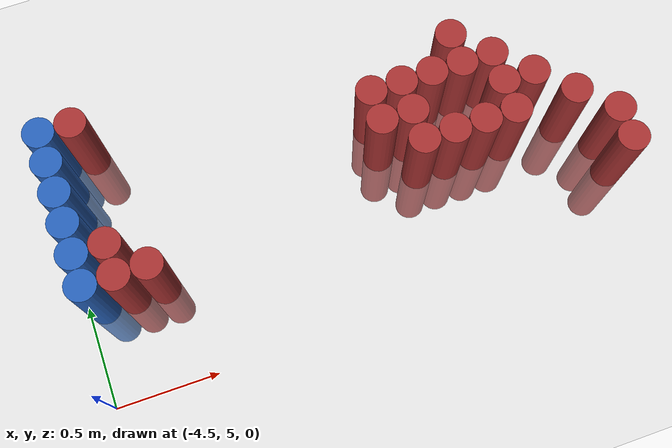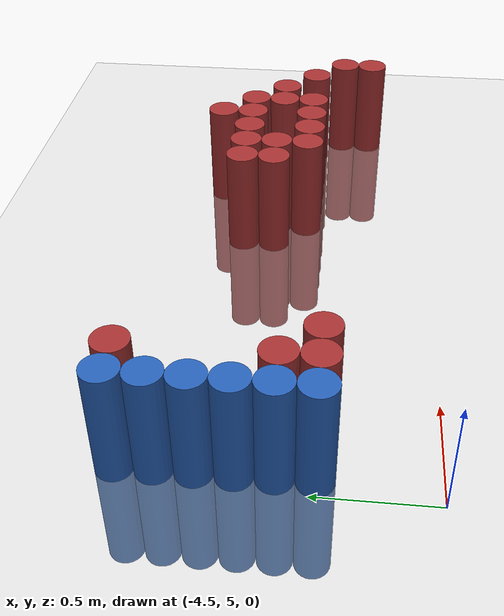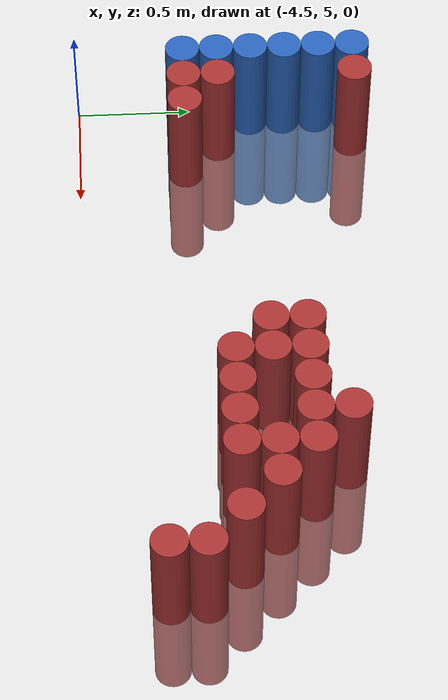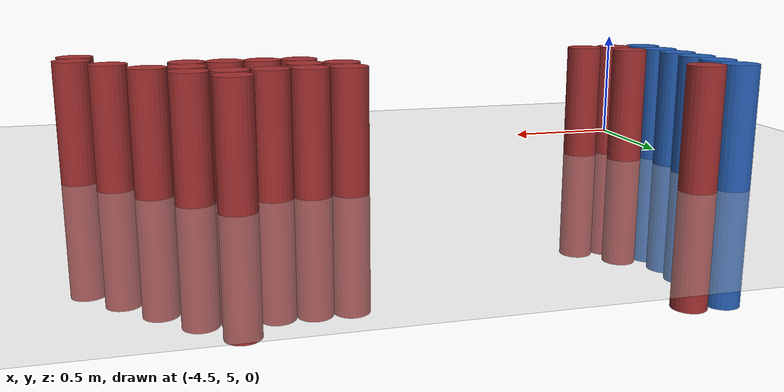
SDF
<sdf version="1.6">
 <world name="default">
  <model name="ground_plane">
   <static>1</static>
   <link name="link">
    <collision name="collision">
     <geometry><plane><normal>0 0 1</normal><size>100 100</size></plane></geometry>
     <surface><friction><ode><mu>100</mu><mu2>50</mu2></ode></friction></surface>
    </collision>
    <visual name="visual">
     <cast_shadows>0</cast_shadows>
     <geometry><plane><normal>0 0 1</normal><size>100 100</size></plane></geometry>
     <material>
      <script><uri>file://media/materials/scripts/gazebo.material</uri><name>Gazebo/Grey</name></script>
     </material>
    </visual>
   </link>
  </model>
  <model name="unit_cylinder_98">
   <static>1</static>
   <pose>-4.425000 5.475000 0.000000 0.000000 0.000000 0.000000</pose>
   <link name="link">
    <inertial>
     <mass>1</mass>
     <inertia><ixx>0.145833</ixx><ixy>0</ixy><ixz>0</ixz><iyy>0.145833</iyy><iyz>0</iyz><izz>0.125</izz></inertia>
    </inertial>
    <collision name="collision">
     <geometry><cylinder><radius>0.075000</radius><length>1</length></cylinder></geometry>
    </collision>
    <visual name="visual">
     <geometry><cylinder><radius>0.075000</radius><length>1</length></cylinder></geometry>
     <material>
      <ambient>0.152000 0.379000 0.720000 1</ambient>
      <diffuse>0.152000 0.379000 0.720000 1</diffuse>
     </material>
     <material>
      <script><name>Gazebo/Grey</name><uri>file://media/materials/scripts/gazebo.material</uri></script>
     </material>
    </visual>
   </link>
  </model>
  <model name="unit_cylinder_99">
   <static>1</static>
   <pose>-4.425000 5.625000 0.000000 0.000000 0.000000 0.000000</pose>
   <link name="link">
    <inertial>
     <mass>1</mass>
     <inertia><ixx>0.145833</ixx><ixy>0</ixy><ixz>0</ixz><iyy>0.145833</iyy><iyz>0</iyz><izz>0.125</izz></inertia>
    </inertial>
    <collision name="collision">
     <geometry><cylinder><radius>0.075000</radius><length>1</length></cylinder></geometry>
    </collision>
    <visual name="visual">
     <geometry><cylinder><radius>0.075000</radius><length>1</length></cylinder></geometry>
     <material>
      <ambient>0.152000 0.379000 0.720000 1</ambient>
      <diffuse>0.152000 0.379000 0.720000 1</diffuse>
     </material>
     <material>
      <script><name>Gazebo/Grey</name><uri>file://media/materials/scripts/gazebo.material</uri></script>
     </material>
    </visual>
   </link>
  </model>
  <model name="unit_cylinder_100">
   <static>1</static>
   <pose>-4.425000 5.775000 0.000000 0.000000 0.000000 0.000000</pose>
   <link name="link">
    <inertial>
     <mass>1</mass>
     <inertia><ixx>0.145833</ixx><ixy>0</ixy><ixz>0</ixz><iyy>0.145833</iyy><iyz>0</iyz><izz>0.125</izz></inertia>
    </inertial>
    <collision name="collision">
     <geometry><cylinder><radius>0.075000</radius><length>1</length></cylinder></geometry>
    </collision>
    <visual name="visual">
     <geometry><cylinder><radius>0.075000</radius><length>1</length></cylinder></geometry>
     <material>
      <ambient>0.152000 0.379000 0.720000 1</ambient>
      <diffuse>0.152000 0.379000 0.720000 1</diffuse>
     </material>
     <material>
      <script><name>Gazebo/Grey</name><uri>file://media/materials/scripts/gazebo.material</uri></script>
     </material>
    </visual>
   </link>
  </model>
  <model name="unit_cylinder_101">
   <static>1</static>
   <pose>-4.425000 5.925000 0.000000 0.000000 0.000000 0.000000</pose>
   <link name="link">
    <inertial>
     <mass>1</mass>
     <inertia><ixx>0.145833</ixx><ixy>0</ixy><ixz>0</ixz><iyy>0.145833</iyy><iyz>0</iyz><izz>0.125</izz></inertia>
    </inertial>
    <collision name="collision">
     <geometry><cylinder><radius>0.075000</radius><length>1</length></cylinder></geometry>
    </collision>
    <visual name="visual">
     <geometry><cylinder><radius>0.075000</radius><length>1</length></cylinder></geometry>
     <material>
      <ambient>0.152000 0.379000 0.720000 1</ambient>
      <diffuse>0.152000 0.379000 0.720000 1</diffuse>
     </material>
     <material>
      <script><name>Gazebo/Grey</name><uri>file://media/materials/scripts/gazebo.material</uri></script>
     </material>
    </visual>
   </link>
  </model>
  <model name="unit_cylinder_102">
   <static>1</static>
   <pose>-4.425000 6.075000 0.000000 0.000000 0.000000 0.000000</pose>
   <link name="link">
    <inertial>
     <mass>1</mass>
     <inertia><ixx>0.145833</ixx><ixy>0</ixy><ixz>0</ixz><iyy>0.145833</iyy><iyz>0</iyz><izz>0.125</izz></inertia>
    </inertial>
    <collision name="collision">
     <geometry><cylinder><radius>0.075000</radius><length>1</length></cylinder></geometry>
    </collision>
    <visual name="visual">
     <geometry><cylinder><radius>0.075000</radius><length>1</length></cylinder></geometry>
     <material>
      <ambient>0.152000 0.379000 0.720000 1</ambient>
      <diffuse>0.152000 0.379000 0.720000 1</diffuse>
     </material>
     <material>
      <script><name>Gazebo/Grey</name><uri>file://media/materials/scripts/gazebo.material</uri></script>
     </material>
    </visual>
   </link>
  </model>
  <model name="unit_cylinder_103">
   <static>1</static>
   <pose>-4.425000 6.225000 0.000000 0.000000 0.000000 0.000000</pose>
   <link name="link">
    <inertial>
     <mass>1</mass>
     <inertia><ixx>0.145833</ixx><ixy>0</ixy><ixz>0</ixz><iyy>0.145833</iyy><iyz>0</iyz><izz>0.125</izz></inertia>
    </inertial>
    <collision name="collision">
     <geometry><cylinder><radius>0.075000</radius><length>1</length></cylinder></geometry>
    </collision>
    <visual name="visual">
     <geometry><cylinder><radius>0.075000</radius><length>1</length></cylinder></geometry>
     <material>
      <ambient>0.152000 0.379000 0.720000 1</ambient>
      <diffuse>0.152000 0.379000 0.720000 1</diffuse>
     </material>
     <material>
      <script><name>Gazebo/Grey</name><uri>file://media/materials/scripts/gazebo.material</uri></script>
     </material>
    </visual>
   </link>
  </model>
  <model name="unit_cylinder_127">
   <static>1</static>
   <pose>-4.275000 5.475000 0.000000 0.000000 0.000000 0.000000</pose>
   <link name="link">
    <inertial>
     <mass>1</mass>
     <inertia><ixx>0.145833</ixx><ixy>0</ixy><ixz>0</ixz><iyy>0.145833</iyy><iyz>0</iyz><izz>0.125</izz></inertia>
    </inertial>
    <collision name="collision">
     <geometry><cylinder><radius>0.075000</radius><length>1</length></cylinder></geometry>
    </collision>
    <visual name="visual">
     <geometry><cylinder><radius>0.075000</radius><length>1</length></cylinder></geometry>
     <material>
      <ambient>0.648000 0.192000 0.192000 1</ambient>
      <diffuse>0.648000 0.192000 0.192000 1</diffuse>
     </material>
     <material>
      <script><name>Gazebo/Grey</name><uri>file://media/materials/scripts/gazebo.material</uri></script>
     </material>
    </visual>
   </link>
  </model>
  <model name="unit_cylinder_128">
   <static>1</static>
   <pose>-4.275000 5.625000 0.000000 0.000000 0.000000 0.000000</pose>
   <link name="link">
    <inertial>
     <mass>1</mass>
     <inertia><ixx>0.145833</ixx><ixy>0</ixy><ixz>0</ixz><iyy>0.145833</iyy><iyz>0</iyz><izz>0.125</izz></inertia>
    </inertial>
    <collision name="collision">
     <geometry><cylinder><radius>0.075000</radius><length>1</length></cylinder></geometry>
    </collision>
    <visual name="visual">
     <geometry><cylinder><radius>0.075000</radius><length>1</length></cylinder></geometry>
     <material>
      <ambient>0.648000 0.192000 0.192000 1</ambient>
      <diffuse>0.648000 0.192000 0.192000 1</diffuse>
     </material>
     <material>
      <script><name>Gazebo/Grey</name><uri>file://media/materials/scripts/gazebo.material</uri></script>
     </material>
    </visual>
   </link>
  </model>
  <model name="unit_cylinder_129">
   <static>1</static>
   <pose>-4.275000 6.225000 0.000000 0.000000 0.000000 0.000000</pose>
   <link name="link">
    <inertial>
     <mass>1</mass>
     <inertia><ixx>0.145833</ixx><ixy>0</ixy><ixz>0</ixz><iyy>0.145833</iyy><iyz>0</iyz><izz>0.125</izz></inertia>
    </inertial>
    <collision name="collision">
     <geometry><cylinder><radius>0.075000</radius><length>1</length></cylinder></geometry>
    </collision>
    <visual name="visual">
     <geometry><cylinder><radius>0.075000</radius><length>1</length></cylinder></geometry>
     <material>
      <ambient>0.648000 0.192000 0.192000 1</ambient>
      <diffuse>0.648000 0.192000 0.192000 1</diffuse>
     </material>
     <material>
      <script><name>Gazebo/Grey</name><uri>file://media/materials/scripts/gazebo.material</uri></script>
     </material>
    </visual>
   </link>
  </model>
  <model name="unit_cylinder_141">
   <static>1</static>
   <pose>-4.125000 5.475000 0.000000 0.000000 0.000000 0.000000</pose>
   <link name="link">
    <inertial>
     <mass>1</mass>
     <inertia><ixx>0.145833</ixx><ixy>0</ixy><ixz>0</ixz><iyy>0.145833</iyy><iyz>0</iyz><izz>0.125</izz></inertia>
    </inertial>
    <collision name="collision">
     <geometry><cylinder><radius>0.075000</radius><length>1</length></cylinder></geometry>
    </collision>
    <visual name="visual">
     <geometry><cylinder><radius>0.075000</radius><length>1</length></cylinder></geometry>
     <material>
      <ambient>0.648000 0.192000 0.192000 1</ambient>
      <diffuse>0.648000 0.192000 0.192000 1</diffuse>
     </material>
     <material>
      <script><name>Gazebo/Grey</name><uri>file://media/materials/scripts/gazebo.material</uri></script>
     </material>
    </visual>
   </link>
  </model>
  <model name="unit_cylinder_156">
   <static>1</static>
   <pose>-2.925000 5.775000 0.000000 0.000000 0.000000 0.000000</pose>
   <link name="link">
    <inertial>
     <mass>1</mass>
     <inertia><ixx>0.145833</ixx><ixy>0</ixy><ixz>0</ixz><iyy>0.145833</iyy><iyz>0</iyz><izz>0.125</izz></inertia>
    </inertial>
    <collision name="collision">
     <geometry><cylinder><radius>0.075000</radius><length>1</length></cylinder></geometry>
    </collision>
    <visual name="visual">
     <geometry><cylinder><radius>0.075000</radius><length>1</length></cylinder></geometry>
     <material>
      <ambient>0.648000 0.192000 0.192000 1</ambient>
      <diffuse>0.648000 0.192000 0.192000 1</diffuse>
     </material>
     <material>
      <script><name>Gazebo/Grey</name><uri>file://media/materials/scripts/gazebo.material</uri></script>
     </material>
    </visual>
   </link>
  </model>
  <model name="unit_cylinder_157">
   <static>1</static>
   <pose>-2.925000 5.925000 0.000000 0.000000 0.000000 0.000000</pose>
   <link name="link">
    <inertial>
     <mass>1</mass>
     <inertia><ixx>0.145833</ixx><ixy>0</ixy><ixz>0</ixz><iyy>0.145833</iyy><iyz>0</iyz><izz>0.125</izz></inertia>
    </inertial>
    <collision name="collision">
     <geometry><cylinder><radius>0.075000</radius><length>1</length></cylinder></geometry>
    </collision>
    <visual name="visual">
     <geometry><cylinder><radius>0.075000</radius><length>1</length></cylinder></geometry>
     <material>
      <ambient>0.648000 0.192000 0.192000 1</ambient>
      <diffuse>0.648000 0.192000 0.192000 1</diffuse>
     </material>
     <material>
      <script><name>Gazebo/Grey</name><uri>file://media/materials/scripts/gazebo.material</uri></script>
     </material>
    </visual>
   </link>
  </model>
  <model name="unit_cylinder_159">
   <static>1</static>
   <pose>-2.775000 5.625000 0.000000 0.000000 0.000000 0.000000</pose>
   <link name="link">
    <inertial>
     <mass>1</mass>
     <inertia><ixx>0.145833</ixx><ixy>0</ixy><ixz>0</ixz><iyy>0.145833</iyy><iyz>0</iyz><izz>0.125</izz></inertia>
    </inertial>
    <collision name="collision">
     <geometry><cylinder><radius>0.075000</radius><length>1</length></cylinder></geometry>
    </collision>
    <visual name="visual">
     <geometry><cylinder><radius>0.075000</radius><length>1</length></cylinder></geometry>
     <material>
      <ambient>0.648000 0.192000 0.192000 1</ambient>
      <diffuse>0.648000 0.192000 0.192000 1</diffuse>
     </material>
     <material>
      <script><name>Gazebo/Grey</name><uri>file://media/materials/scripts/gazebo.material</uri></script>
     </material>
    </visual>
   </link>
  </model>
  <model name="unit_cylinder_160">
   <static>1</static>
   <pose>-2.775000 5.775000 0.000000 0.000000 0.000000 0.000000</pose>
   <link name="link">
    <inertial>
     <mass>1</mass>
     <inertia><ixx>0.145833</ixx><ixy>0</ixy><ixz>0</ixz><iyy>0.145833</iyy><iyz>0</iyz><izz>0.125</izz></inertia>
    </inertial>
    <collision name="collision">
     <geometry><cylinder><radius>0.075000</radius><length>1</length></cylinder></geometry>
    </collision>
    <visual name="visual">
     <geometry><cylinder><radius>0.075000</radius><length>1</length></cylinder></geometry>
     <material>
      <ambient>0.648000 0.192000 0.192000 1</ambient>
      <diffuse>0.648000 0.192000 0.192000 1</diffuse>
     </material>
     <material>
      <script><name>Gazebo/Grey</name><uri>file://media/materials/scripts/gazebo.material</uri></script>
     </material>
    </visual>
   </link>
  </model>
  <model name="unit_cylinder_161">
   <static>1</static>
   <pose>-2.775000 5.925000 0.000000 0.000000 0.000000 0.000000</pose>
   <link name="link">
    <inertial>
     <mass>1</mass>
     <inertia><ixx>0.145833</ixx><ixy>0</ixy><ixz>0</ixz><iyy>0.145833</iyy><iyz>0</iyz><izz>0.125</izz></inertia>
    </inertial>
    <collision name="collision">
     <geometry><cylinder><radius>0.075000</radius><length>1</length></cylinder></geometry>
    </collision>
    <visual name="visual">
     <geometry><cylinder><radius>0.075000</radius><length>1</length></cylinder></geometry>
     <material>
      <ambient>0.648000 0.192000 0.192000 1</ambient>
      <diffuse>0.648000 0.192000 0.192000 1</diffuse>
     </material>
     <material>
      <script><name>Gazebo/Grey</name><uri>file://media/materials/scripts/gazebo.material</uri></script>
     </material>
    </visual>
   </link>
  </model>
  <model name="unit_cylinder_165">
   <static>1</static>
   <pose>-2.625000 5.625000 0.000000 0.000000 0.000000 0.000000</pose>
   <link name="link">
    <inertial>
     <mass>1</mass>
     <inertia><ixx>0.145833</ixx><ixy>0</ixy><ixz>0</ixz><iyy>0.145833</iyy><iyz>0</iyz><izz>0.125</izz></inertia>
    </inertial>
    <collision name="collision">
     <geometry><cylinder><radius>0.075000</radius><length>1</length></cylinder></geometry>
    </collision>
    <visual name="visual">
     <geometry><cylinder><radius>0.075000</radius><length>1</length></cylinder></geometry>
     <material>
      <ambient>0.648000 0.192000 0.192000 1</ambient>
      <diffuse>0.648000 0.192000 0.192000 1</diffuse>
     </material>
     <material>
      <script><name>Gazebo/Grey</name><uri>file://media/materials/scripts/gazebo.material</uri></script>
     </material>
    </visual>
   </link>
  </model>
  <model name="unit_cylinder_166">
   <static>1</static>
   <pose>-2.625000 5.925000 0.000000 0.000000 0.000000 0.000000</pose>
   <link name="link">
    <inertial>
     <mass>1</mass>
     <inertia><ixx>0.145833</ixx><ixy>0</ixy><ixz>0</ixz><iyy>0.145833</iyy><iyz>0</iyz><izz>0.125</izz></inertia>
    </inertial>
    <collision name="collision">
     <geometry><cylinder><radius>0.075000</radius><length>1</length></cylinder></geometry>
    </collision>
    <visual name="visual">
     <geometry><cylinder><radius>0.075000</radius><length>1</length></cylinder></geometry>
     <material>
      <ambient>0.648000 0.192000 0.192000 1</ambient>
      <diffuse>0.648000 0.192000 0.192000 1</diffuse>
     </material>
     <material>
      <script><name>Gazebo/Grey</name><uri>file://media/materials/scripts/gazebo.material</uri></script>
     </material>
    </visual>
   </link>
  </model>
  <model name="unit_cylinder_171">
   <static>1</static>
   <pose>-2.475000 5.625000 0.000000 0.000000 0.000000 0.000000</pose>
   <link name="link">
    <inertial>
     <mass>1</mass>
     <inertia><ixx>0.145833</ixx><ixy>0</ixy><ixz>0</ixz><iyy>0.145833</iyy><iyz>0</iyz><izz>0.125</izz></inertia>
    </inertial>
    <collision name="collision">
     <geometry><cylinder><radius>0.075000</radius><length>1</length></cylinder></geometry>
    </collision>
    <visual name="visual">
     <geometry><cylinder><radius>0.075000</radius><length>1</length></cylinder></geometry>
     <material>
      <ambient>0.648000 0.192000 0.192000 1</ambient>
      <diffuse>0.648000 0.192000 0.192000 1</diffuse>
     </material>
     <material>
      <script><name>Gazebo/Grey</name><uri>file://media/materials/scripts/gazebo.material</uri></script>
     </material>
    </visual>
   </link>
  </model>
  <model name="unit_cylinder_172">
   <static>1</static>
   <pose>-2.475000 5.925000 0.000000 0.000000 0.000000 0.000000</pose>
   <link name="link">
    <inertial>
     <mass>1</mass>
     <inertia><ixx>0.145833</ixx><ixy>0</ixy><ixz>0</ixz><iyy>0.145833</iyy><iyz>0</iyz><izz>0.125</izz></inertia>
    </inertial>
    <collision name="collision">
     <geometry><cylinder><radius>0.075000</radius><length>1</length></cylinder></geometry>
    </collision>
    <visual name="visual">
     <geometry><cylinder><radius>0.075000</radius><length>1</length></cylinder></geometry>
     <material>
      <ambient>0.648000 0.192000 0.192000 1</ambient>
      <diffuse>0.648000 0.192000 0.192000 1</diffuse>
     </material>
     <material>
      <script><name>Gazebo/Grey</name><uri>file://media/materials/scripts/gazebo.material</uri></script>
     </material>
    </visual>
   </link>
  </model>
  <model name="unit_cylinder_173">
   <static>1</static>
   <pose>-2.475000 6.075000 0.000000 0.000000 0.000000 0.000000</pose>
   <link name="link">
    <inertial>
     <mass>1</mass>
     <inertia><ixx>0.145833</ixx><ixy>0</ixy><ixz>0</ixz><iyy>0.145833</iyy><iyz>0</iyz><izz>0.125</izz></inertia>
    </inertial>
    <collision name="collision">
     <geometry><cylinder><radius>0.075000</radius><length>1</length></cylinder></geometry>
    </collision>
    <visual name="visual">
     <geometry><cylinder><radius>0.075000</radius><length>1</length></cylinder></geometry>
     <material>
      <ambient>0.648000 0.192000 0.192000 1</ambient>
      <diffuse>0.648000 0.192000 0.192000 1</diffuse>
     </material>
     <material>
      <script><name>Gazebo/Grey</name><uri>file://media/materials/scripts/gazebo.material</uri></script>
     </material>
    </visual>
   </link>
  </model>
  <model name="unit_cylinder_178">
   <static>1</static>
   <pose>-2.325000 5.625000 0.000000 0.000000 0.000000 0.000000</pose>
   <link name="link">
    <inertial>
     <mass>1</mass>
     <inertia><ixx>0.145833</ixx><ixy>0</ixy><ixz>0</ixz><iyy>0.145833</iyy><iyz>0</iyz><izz>0.125</izz></inertia>
    </inertial>
    <collision name="collision">
     <geometry><cylinder><radius>0.075000</radius><length>1</length></cylinder></geometry>
    </collision>
    <visual name="visual">
     <geometry><cylinder><radius>0.075000</radius><length>1</length></cylinder></geometry>
     <material>
      <ambient>0.648000 0.192000 0.192000 1</ambient>
      <diffuse>0.648000 0.192000 0.192000 1</diffuse>
     </material>
     <material>
      <script><name>Gazebo/Grey</name><uri>file://media/materials/scripts/gazebo.material</uri></script>
     </material>
    </visual>
   </link>
  </model>
  <model name="unit_cylinder_179">
   <static>1</static>
   <pose>-2.325000 5.775000 0.000000 0.000000 0.000000 0.000000</pose>
   <link name="link">
    <inertial>
     <mass>1</mass>
     <inertia><ixx>0.145833</ixx><ixy>0</ixy><ixz>0</ixz><iyy>0.145833</iyy><iyz>0</iyz><izz>0.125</izz></inertia>
    </inertial>
    <collision name="collision">
     <geometry><cylinder><radius>0.075000</radius><length>1</length></cylinder></geometry>
    </collision>
    <visual name="visual">
     <geometry><cylinder><radius>0.075000</radius><length>1</length></cylinder></geometry>
     <material>
      <ambient>0.648000 0.192000 0.192000 1</ambient>
      <diffuse>0.648000 0.192000 0.192000 1</diffuse>
     </material>
     <material>
      <script><name>Gazebo/Grey</name><uri>file://media/materials/scripts/gazebo.material</uri></script>
     </material>
    </visual>
   </link>
  </model>
  <model name="unit_cylinder_180">
   <static>1</static>
   <pose>-2.325000 5.925000 0.000000 0.000000 0.000000 0.000000</pose>
   <link name="link">
    <inertial>
     <mass>1</mass>
     <inertia><ixx>0.145833</ixx><ixy>0</ixy><ixz>0</ixz><iyy>0.145833</iyy><iyz>0</iyz><izz>0.125</izz></inertia>
    </inertial>
    <collision name="collision">
     <geometry><cylinder><radius>0.075000</radius><length>1</length></cylinder></geometry>
    </collision>
    <visual name="visual">
     <geometry><cylinder><radius>0.075000</radius><length>1</length></cylinder></geometry>
     <material>
      <ambient>0.648000 0.192000 0.192000 1</ambient>
      <diffuse>0.648000 0.192000 0.192000 1</diffuse>
     </material>
     <material>
      <script><name>Gazebo/Grey</name><uri>file://media/materials/scripts/gazebo.material</uri></script>
     </material>
    </visual>
   </link>
  </model>
  <model name="unit_cylinder_184">
   <static>1</static>
   <pose>-2.175000 5.775000 0.000000 0.000000 0.000000 0.000000</pose>
   <link name="link">
    <inertial>
     <mass>1</mass>
     <inertia><ixx>0.145833</ixx><ixy>0</ixy><ixz>0</ixz><iyy>0.145833</iyy><iyz>0</iyz><izz>0.125</izz></inertia>
    </inertial>
    <collision name="collision">
     <geometry><cylinder><radius>0.075000</radius><length>1</length></cylinder></geometry>
    </collision>
    <visual name="visual">
     <geometry><cylinder><radius>0.075000</radius><length>1</length></cylinder></geometry>
     <material>
      <ambient>0.648000 0.192000 0.192000 1</ambient>
      <diffuse>0.648000 0.192000 0.192000 1</diffuse>
     </material>
     <material>
      <script><name>Gazebo/Grey</name><uri>file://media/materials/scripts/gazebo.material</uri></script>
     </material>
    </visual>
   </link>
  </model>
  <model name="unit_cylinder_189">
   <static>1</static>
   <pose>-2.025000 5.625000 0.000000 0.000000 0.000000 0.000000</pose>
   <link name="link">
    <inertial>
     <mass>1</mass>
     <inertia><ixx>0.145833</ixx><ixy>0</ixy><ixz>0</ixz><iyy>0.145833</iyy><iyz>0</iyz><izz>0.125</izz></inertia>
    </inertial>
    <collision name="collision">
     <geometry><cylinder><radius>0.075000</radius><length>1</length></cylinder></geometry>
    </collision>
    <visual name="visual">
     <geometry><cylinder><radius>0.075000</radius><length>1</length></cylinder></geometry>
     <material>
      <ambient>0.648000 0.192000 0.192000 1</ambient>
      <diffuse>0.648000 0.192000 0.192000 1</diffuse>
     </material>
     <material>
      <script><name>Gazebo/Grey</name><uri>file://media/materials/scripts/gazebo.material</uri></script>
     </material>
    </visual>
   </link>
  </model>
  <model name="unit_cylinder_191">
   <static>1</static>
   <pose>-1.875000 5.325000 0.000000 0.000000 0.000000 0.000000</pose>
   <link name="link">
    <inertial>
     <mass>1</mass>
     <inertia><ixx>0.145833</ixx><ixy>0</ixy><ixz>0</ixz><iyy>0.145833</iyy><iyz>0</iyz><izz>0.125</izz></inertia>
    </inertial>
    <collision name="collision">
     <geometry><cylinder><radius>0.075000</radius><length>1</length></cylinder></geometry>
    </collision>
    <visual name="visual">
     <geometry><cylinder><radius>0.075000</radius><length>1</length></cylinder></geometry>
     <material>
      <ambient>0.648000 0.192000 0.192000 1</ambient>
      <diffuse>0.648000 0.192000 0.192000 1</diffuse>
     </material>
     <material>
      <script><name>Gazebo/Grey</name><uri>file://media/materials/scripts/gazebo.material</uri></script>
     </material>
    </visual>
   </link>
  </model>
  <model name="unit_cylinder_192">
   <static>1</static>
   <pose>-1.875000 5.475000 0.000000 0.000000 0.000000 0.000000</pose>
   <link name="link">
    <inertial>
     <mass>1</mass>
     <inertia><ixx>0.145833</ixx><ixy>0</ixy><ixz>0</ixz><iyy>0.145833</iyy><iyz>0</iyz><izz>0.125</izz></inertia>
    </inertial>
    <collision name="collision">
     <geometry><cylinder><radius>0.075000</radius><length>1</length></cylinder></geometry>
    </collision>
    <visual name="visual">
     <geometry><cylinder><radius>0.075000</radius><length>1</length></cylinder></geometry>
     <material>
      <ambient>0.648000 0.192000 0.192000 1</ambient>
      <diffuse>0.648000 0.192000 0.192000 1</diffuse>
     </material>
     <material>
      <script><name>Gazebo/Grey</name><uri>file://media/materials/scripts/gazebo.material</uri></script>
     </material>
    </visual>
   </link>
  </model>
 </world>
</sdf>
